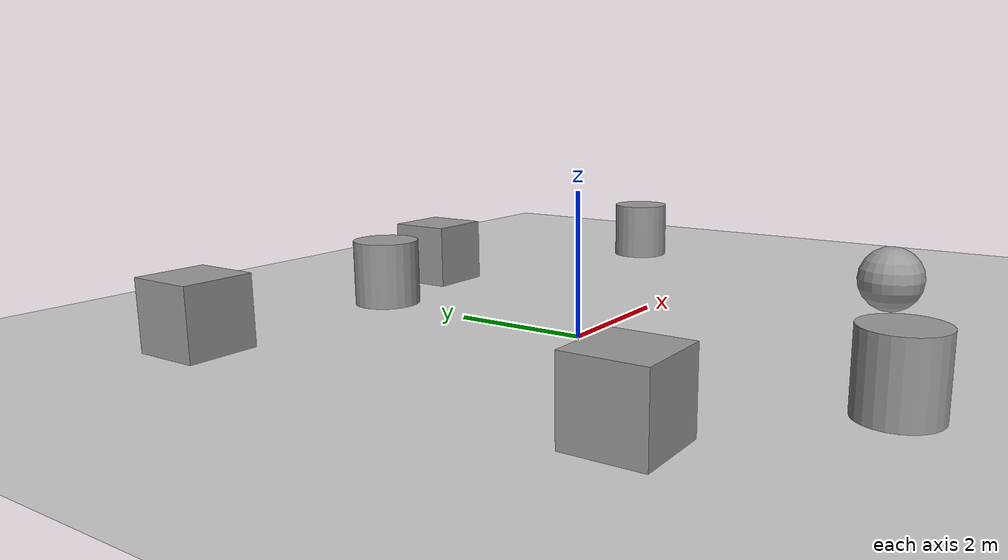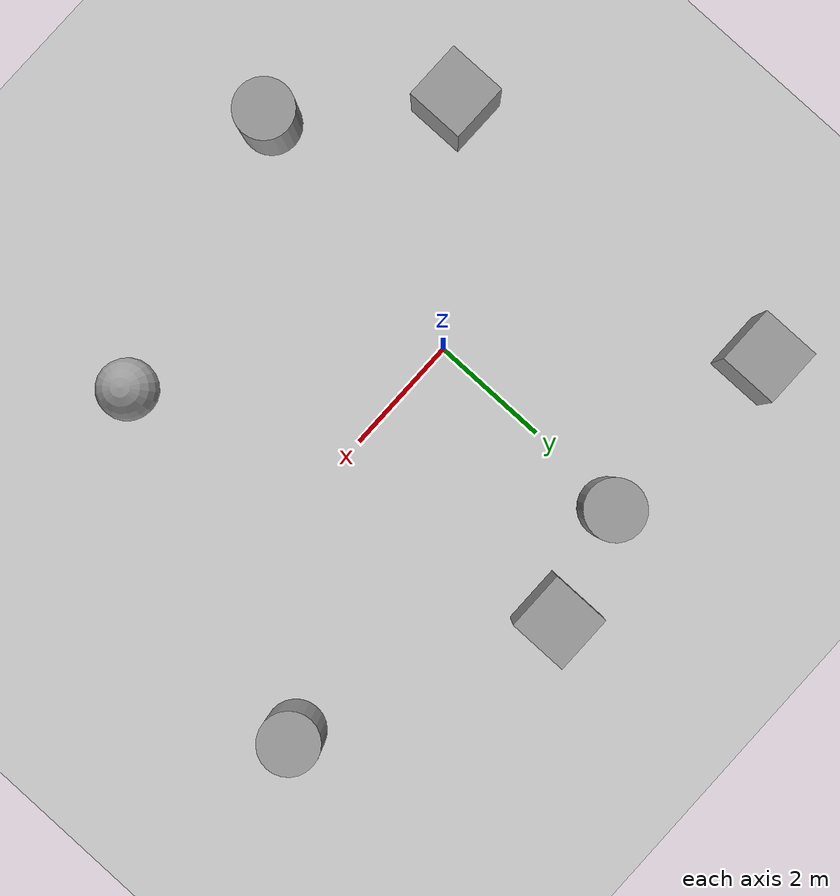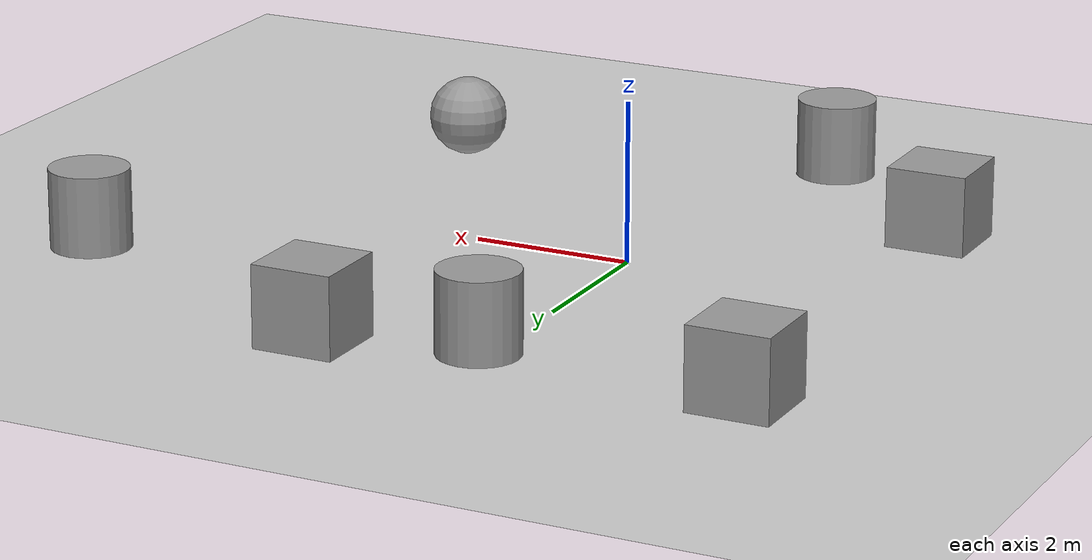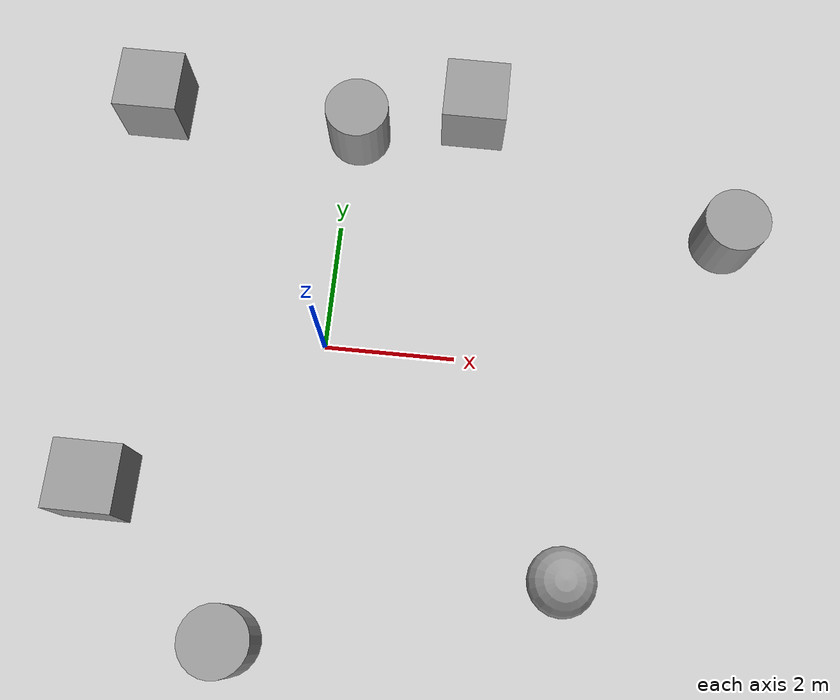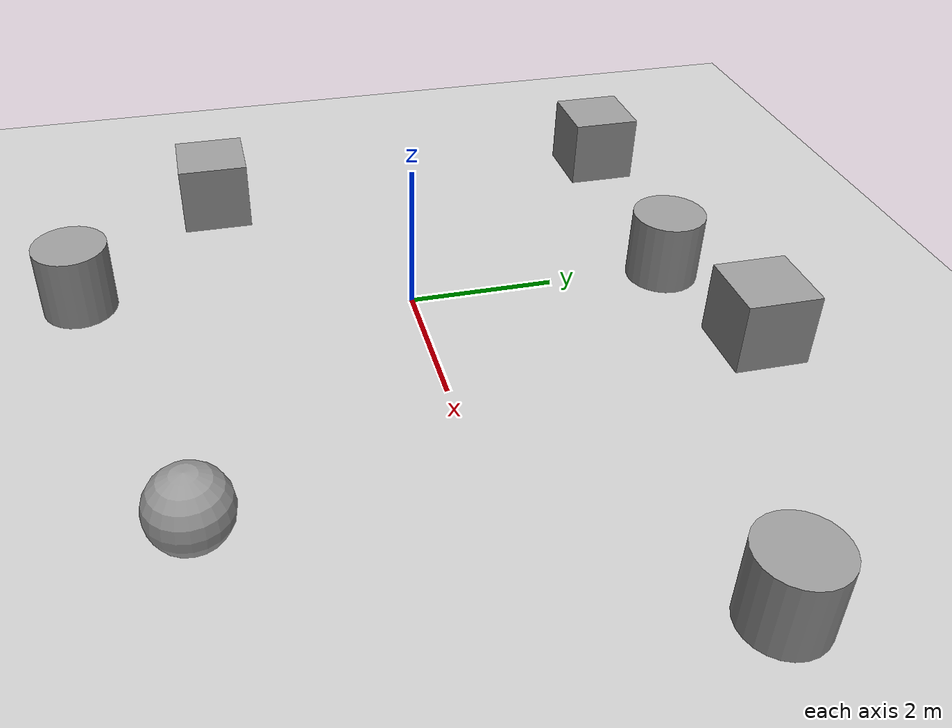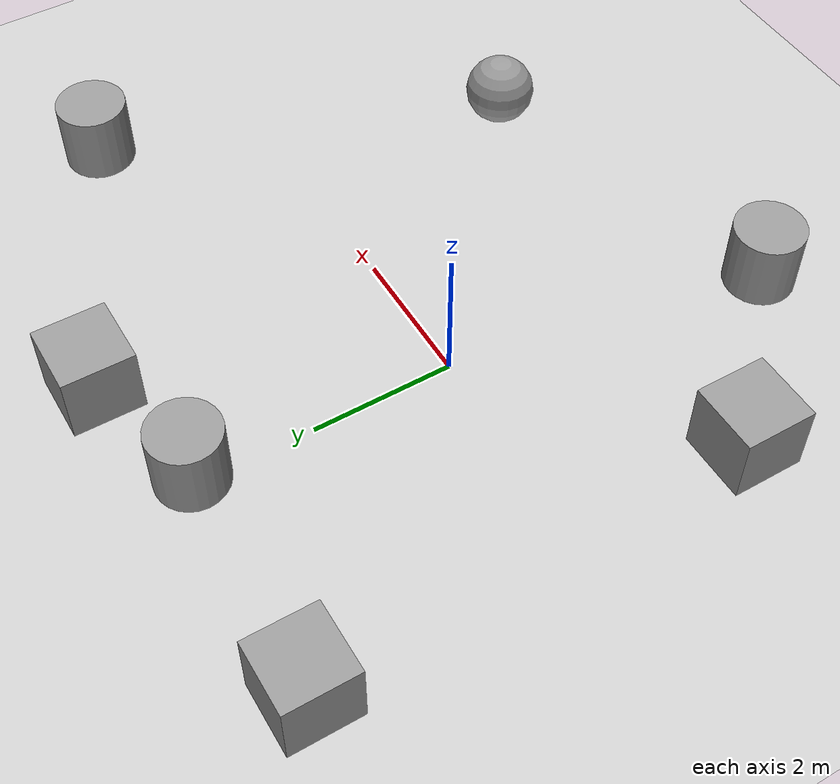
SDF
<sdf version="1.7">
 <world name="default">
  <light name="sun" type="directional">
   <pose>0 0 10 0 -0 0</pose>
   <diffuse>0.8 0.8 0.8 1</diffuse>
   <specular>0.2 0.2 0.2 1</specular>
   <attenuation>
    <range>1000</range>
    <constant>0.9</constant>
    <linear>0.01</linear>
    <quadratic>0.001</quadratic>
   </attenuation>
   <direction>-0.5 0.1 -0.9</direction>
   <spot><inner_angle>0</inner_angle><outer_angle>0</outer_angle><falloff>0</falloff></spot>
  </light>
  <model name="ground_plane">
   <static>1</static>
   <link name="link">
    <collision name="collision">
     <geometry><plane><normal>0 0 1</normal><size>100 100</size></plane></geometry>
     <surface><friction><ode><mu>100</mu><mu2>50</mu2></ode></friction></surface>
    </collision>
    <visual name="visual">
     <cast_shadows>0</cast_shadows>
     <geometry><plane><normal>0 0 1</normal><size>100 100</size></plane></geometry>
     <material>
      <script><uri>file://media/materials/scripts/gazebo.material</uri><name>Gazebo/Grey</name></script>
     </material>
    </visual>
   </link>
  </model>
  <gravity>0 0 -9.8</gravity>
  <magnetic_field>6e-06 2.3e-05 -4.2e-05</magnetic_field>
  <atmosphere type="adiabatic"/>
  <physics type="ode">
   <max_step_size>0.001</max_step_size>
   <real_time_factor>1</real_time_factor>
   <real_time_update_rate>1000</real_time_update_rate>
  </physics>
  <scene><ambient>0.4 0.4 0.4 1</ambient><background>0.7 0.7 0.7 1</background><shadows>1</shadows></scene>
  <audio><device>default</device></audio>
  <spherical_coordinates>
   <surface_model>EARTH_WGS84</surface_model>
   <latitude_deg>0</latitude_deg>
   <longitude_deg>0</longitude_deg>
   <elevation>0</elevation>
   <heading_deg>0</heading_deg>
  </spherical_coordinates>
  <model name="unit_box">
   <pose>-3.01327 -2.46554 0.499995 -1e-05 -0 -0</pose>
   <link name="link">
    <inertial>
     <mass>1</mass>
     <inertia>
      <ixx>0.166667</ixx>
      <ixy>0</ixy>
      <ixz>0</ixz>
      <iyy>0.166667</iyy>
      <iyz>0</iyz>
      <izz>0.166667</izz>
     </inertia>
    </inertial>
    <collision name="collision"><geometry><box><size>1 1 1</size></box></geometry></collision>
    <visual name="visual">
     <geometry><box><size>1 1 1</size></box></geometry>
     <material>
      <script><name>Gazebo/Grey</name><uri>file://media/materials/scripts/gazebo.material</uri></script>
     </material>
    </visual>
   </link>
  </model>
  <model name="unit_box_0">
   <pose>-3.20164 3.81591 0.499995 0 1e-05 0</pose>
   <link name="link">
    <inertial>
     <mass>1</mass>
     <inertia>
      <ixx>0.166667</ixx>
      <ixy>0</ixy>
      <ixz>0</ixz>
      <iyy>0.166667</iyy>
      <iyz>0</iyz>
      <izz>0.166667</izz>
     </inertia>
    </inertial>
    <collision name="collision"><geometry><box><size>1 1 1</size></box></geometry></collision>
    <visual name="visual">
     <geometry><box><size>1 1 1</size></box></geometry>
     <material>
      <script><name>Gazebo/Grey</name><uri>file://media/materials/scripts/gazebo.material</uri></script>
     </material>
    </visual>
   </link>
  </model>
  <model name="unit_box_1">
   <pose>1.95474 4.14914 0.499995 -1e-05 -0 -0</pose>
   <link name="link">
    <inertial>
     <mass>1</mass>
     <inertia>
      <ixx>0.166667</ixx>
      <ixy>0</ixy>
      <ixz>0</ixz>
      <iyy>0.166667</iyy>
      <iyz>0</iyz>
      <izz>0.166667</izz>
     </inertia>
    </inertial>
    <collision name="collision"><geometry><box><size>1 1 1</size></box></geometry></collision>
    <visual name="visual">
     <geometry><box><size>1 1 1</size></box></geometry>
     <material>
      <script><name>Gazebo/Grey</name><uri>file://media/materials/scripts/gazebo.material</uri></script>
     </material>
    </visual>
   </link>
  </model>
  <model name="unit_sphere">
   <pose>3.80202 -3.20798 0.5 0 -0 0</pose>
   <link name="link">
    <inertial>
     <mass>1</mass>
     <inertia><ixx>0.1</ixx><ixy>0</ixy><ixz>0</ixz><iyy>0.1</iyy><iyz>0</iyz><izz>0.1</izz></inertia>
    </inertial>
    <collision name="collision"><geometry><sphere><radius>0.5</radius></sphere></geometry></collision>
    <visual name="visual">
     <geometry><sphere><radius>0.5</radius></sphere></geometry>
     <material>
      <script><name>Gazebo/Grey</name><uri>file://media/materials/scripts/gazebo.material</uri></script>
     </material>
    </visual>
   </link>
  </model>
  <model name="unit_cylinder">
   <pose>-0.83616 -4.47574 0.499993 -3e-06 -3e-06 0</pose>
   <link name="link">
    <inertial>
     <mass>1</mass>
     <inertia><ixx>0.145833</ixx><ixy>0</ixy><ixz>0</ixz><iyy>0.145833</iyy><iyz>0</iyz><izz>0.125</izz></inertia>
    </inertial>
    <collision name="collision">
     <geometry><cylinder><radius>0.5</radius><length>1</length></cylinder></geometry>
    </collision>
    <visual name="visual">
     <geometry><cylinder><radius>0.5</radius><length>1</length></cylinder></geometry>
     <material>
      <script><name>Gazebo/Grey</name><uri>file://media/materials/scripts/gazebo.material</uri></script>
     </material>
    </visual>
   </link>
  </model>
  <model name="unit_cylinder_0">
   <pose>6.06116 2.33363 0.499993 -3e-06 -4e-06 -0</pose>
   <link name="link">
    <inertial>
     <mass>1</mass>
     <inertia><ixx>0.145833</ixx><ixy>0</ixy><ixz>0</ixz><iyy>0.145833</iyy><iyz>0</iyz><izz>0.125</izz></inertia>
    </inertial>
    <collision name="collision">
     <geometry><cylinder><radius>0.5</radius><length>1</length></cylinder></geometry>
    </collision>
    <visual name="visual">
     <geometry><cylinder><radius>0.5</radius><length>1</length></cylinder></geometry>
     <material>
      <script><name>Gazebo/Grey</name><uri>file://media/materials/scripts/gazebo.material</uri></script>
     </material>
    </visual>
   </link>
  </model>
  <model name="unit_cylinder_1">
   <pose>0.115639 3.64025 0.499997 3e-06 4e-06 -0</pose>
   <link name="link">
    <inertial>
     <mass>1</mass>
     <inertia><ixx>0.145833</ixx><ixy>0</ixy><ixz>0</ixz><iyy>0.145833</iyy><iyz>0</iyz><izz>0.125</izz></inertia>
    </inertial>
    <collision name="collision">
     <geometry><cylinder><radius>0.5</radius><length>1</length></cylinder></geometry>
    </collision>
    <visual name="visual">
     <geometry><cylinder><radius>0.5</radius><length>1</length></cylinder></geometry>
     <material>
      <script><name>Gazebo/Grey</name><uri>file://media/materials/scripts/gazebo.material</uri></script>
     </material>
    </visual>
   </link>
  </model>
  <light name="user_point_light_0" type="point">
   <pose>-0.02272 0.02418 1 0 -0 0</pose>
   <diffuse>0.5 0.5 0.5 1</diffuse>
   <specular>0.1 0.1 0.1 1</specular>
   <attenuation>
    <range>20</range>
    <constant>0.5</constant>
    <linear>0.01</linear>
    <quadratic>0.001</quadratic>
   </attenuation>
   <cast_shadows>0</cast_shadows>
   <direction>0 0 -1</direction>
  </light>
 </world>
</sdf>
